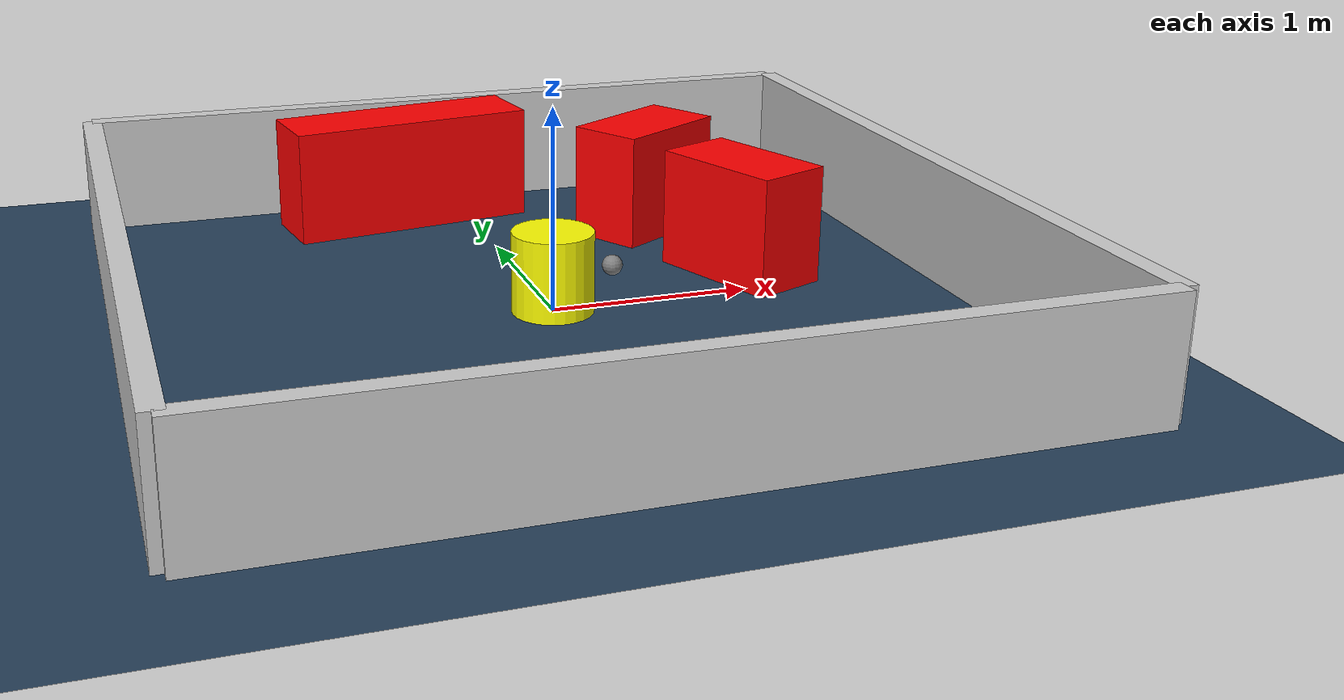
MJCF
<?xml version="1.0" ?>
<mujoco model="generated_environment">
  <option timestep="0.01" integrator="RK4" cone="elliptic"/>
  <default>
    <geom density="1"/>
  </default>
  <asset>
    <texture builtin="gradient" height="3072" rgb1="0.3 0.5 0.7" rgb2="0 0 0" type="skybox" width="512"/>
    <texture builtin="checker" height="300" mark="edge" markrgb="0.8 0.8 0.8" name="groundplane" rgb1="0.2 0.3 0.4" rgb2="0.1 0.2 0.3" type="2d" width="300"/>
    <material name="groundplane" reflectance="0.2" texrepeat="5 5" texture="groundplane" texuniform="true"/>
    <material name="robot" rgba="0.0 1.0 0.0 1"/>
  </asset>
  <worldbody>
    <light dir="0 0 -1" directional="true" pos="0 0 1.5"/>
    <geom condim="4" friction="1.0 0.005 0.001" material="groundplane" name="floor" size="0 0 0.05" type="plane"/>
    <body name="walls">
      <geom name="wall_1" condim="4" pos="-2.0 0.0 0.3" rgba="0.800000011920929 0.800000011920929 0.800000011920929 1.0" size="0.05 2.0 0.3" type="box"/>
      <geom name="wall_2" condim="4" pos="2.0 0.0 0.3" rgba="0.800000011920929 0.800000011920929 0.800000011920929 1.0" size="0.05 2.0 0.3" type="box"/>
      <geom name="wall_3" condim="4" pos="0.0 -2.0 0.3" rgba="0.800000011920929 0.800000011920929 0.800000011920929 1.0" size="2.0 0.05 0.3" type="box"/>
      <geom name="wall_4" condim="4" pos="0.0 2.0 0.3" rgba="0.800000011920929 0.800000011920929 0.800000011920929 1.0" size="2.0 0.05 0.3" type="box"/>
    </body>
    <body name="robot">
      <joint name="joint_x" type="slide" pos="0 0 0" axis="1 0 0"/>
      <joint name="joint_y" type="slide" pos="0 0 0" axis="0 1 0"/>
      <geom name="robot" type="sphere" pos="0.3 0.0 0.2" size="0.05" mass="5." friction="1.0 0.005 0.0001" condim="4" rgba="0.5 0.5 0.5 1.0"/>
      <site name="sensor_ball"/>
    </body>
    <body name="obstacle_movable_1">
      <geom name="obstacle_movable_1" condim="4" pos="0.0 0.0 0.2" euler="0 0 0.0" friction="1.0 0.005 0.001" rgba="1.0 1.0 0.0 1.0" size="0.2 0.2 0.0" type="cylinder" mass="0.1"/>
      <joint type="free"/>
    </body>
    <body name="obstacle_2_static">
      <geom name="obstacle_2_static" condim="4" pos="0.8666128316958075 1.1044041598235077 0.3" euler="0 0 30.763779801424768" friction="1.0 0.005 0.001" rgba="1 0 0 1" size="0.33430444900925355 0.2 0.3" type="box"/>
    </body>
    <body name="obstacle_3_static">
      <geom name="obstacle_3_static" condim="4" pos="-0.3631666378601226 1.6440670034076763 0.3" euler="0 0 8.690226152206616" friction="1.0 0.005 0.001" rgba="1 0 0 1" size="0.6543263703470883 0.2 0.3" type="box"/>
    </body>
    <body name="obstacle_4_static">
      <geom name="obstacle_4_static" condim="4" pos="1.0790696852689718 0.2556176816270048 0.3" euler="0 0 291.87127586586115" friction="1.0 0.005 0.001" rgba="1 0 0 1" size="0.3570524427737221 0.2 0.3" type="box"/>
    </body>
  </worldbody>
  <actuator>
    <motor name="actuator_x" joint="joint_x" gear="1" ctrlrange="-1 1"/>
    <motor name="actuator_y" joint="joint_y" gear="1" ctrlrange="-1 1"/>
  </actuator>
</mujoco>
